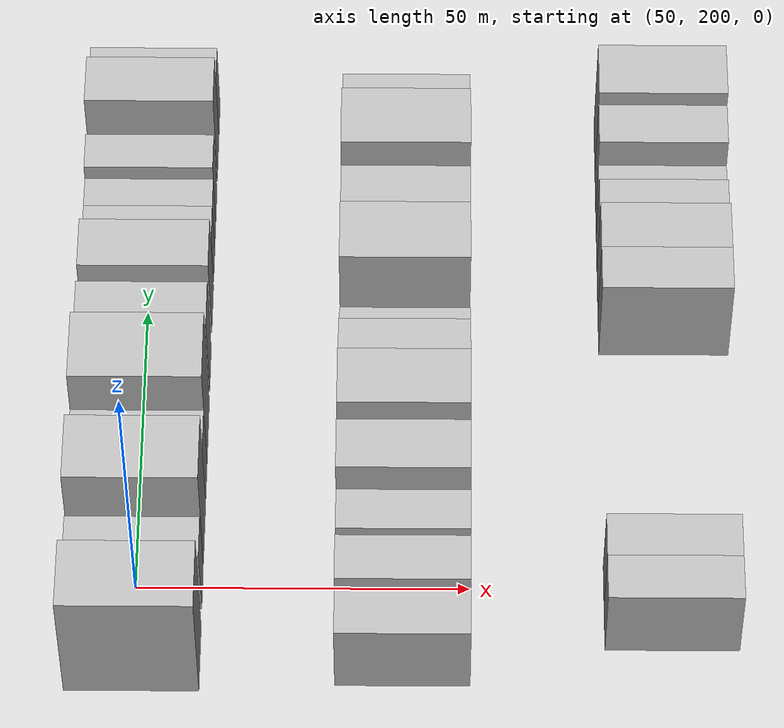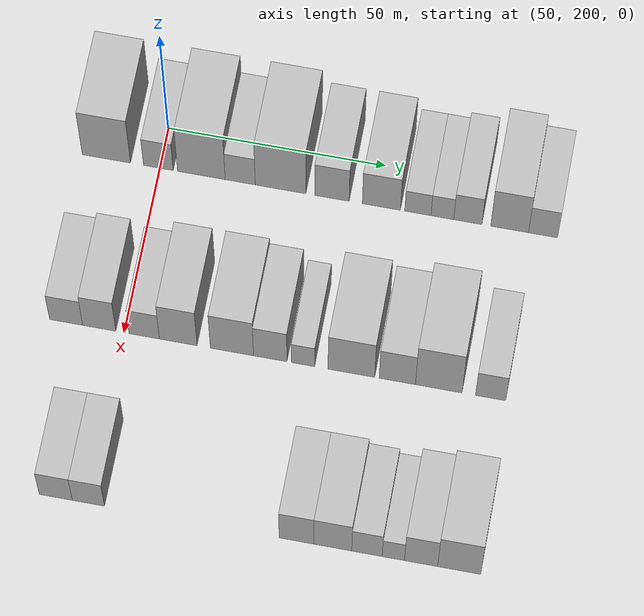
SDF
<sdf version="1.6">
 <world name="default">
  <model name="building_63">
   <static>1</static>
   <pose>50.0000 187.7218 0 0.000000 0.000000 0.000000</pose>
   <link name="link">
    <pose>0 0 12.00 0 0 0</pose>
    <collision name="collision"><geometry><box><size>20.0000 11.0932 24.0000</size></box></geometry></collision>
    <visual name="visual">
     <cast_shadows>0</cast_shadows>
     <geometry><box><size>20.0000 11.0932 24.0000</size></box></geometry>
     <material>
      <script>
       <uri>model://HANNAS_wall/materials/scripts</uri>
       <uri>model://HANNAS_wall/materials/textures</uri>
       <name>vrc/HANNAS_wall</name>
      </script>
     </material>
    </visual>
   </link>
  </model>
  <model name="building_64">
   <static>1</static>
   <pose>50.0000 199.6790 0 0.000000 0.000000 0.000000</pose>
   <link name="link">
    <pose>0 0 7.50 0 0 0</pose>
    <collision name="collision"><geometry><box><size>20.0000 6.8211 15.0000</size></box></geometry></collision>
    <visual name="visual">
     <cast_shadows>0</cast_shadows>
     <geometry><box><size>20.0000 6.8211 15.0000</size></box></geometry>
     <material>
      <script>
       <uri>model://HANNAS_wall/materials/scripts</uri>
       <uri>model://HANNAS_wall/materials/textures</uri>
       <name>vrc/HANNAS_wall</name>
      </script>
     </material>
    </visual>
   </link>
  </model>
  <model name="building_65">
   <static>1</static>
   <pose>50.0000 209.5486 0 0.000000 0.000000 0.000000</pose>
   <link name="link">
    <pose>0 0 12.00 0 0 0</pose>
    <collision name="collision"><geometry><box><size>20.0000 10.9182 24.0000</size></box></geometry></collision>
    <visual name="visual">
     <cast_shadows>0</cast_shadows>
     <geometry><box><size>20.0000 10.9182 24.0000</size></box></geometry>
     <material>
      <script>
       <uri>model://HANNAS_wall/materials/scripts</uri>
       <uri>model://HANNAS_wall/materials/textures</uri>
       <name>vrc/HANNAS_wall</name>
      </script>
     </material>
    </visual>
   </link>
  </model>
  <model name="building_66">
   <static>1</static>
   <pose>50.0000 218.4576 0 0.000000 0.000000 0.000000</pose>
   <link name="link">
    <pose>0 0 7.50 0 0 0</pose>
    <collision name="collision"><geometry><box><size>20.0000 6.8998 15.0000</size></box></geometry></collision>
    <visual name="visual">
     <cast_shadows>0</cast_shadows>
     <geometry><box><size>20.0000 6.8998 15.0000</size></box></geometry>
     <material>
      <script>
       <uri>model://HANNAS_wall/materials/scripts</uri>
       <uri>model://HANNAS_wall/materials/textures</uri>
       <name>vrc/HANNAS_wall</name>
      </script>
     </material>
    </visual>
   </link>
  </model>
  <model name="building_67">
   <static>1</static>
   <pose>50.0000 227.6946 0 0.000000 0.000000 0.000000</pose>
   <link name="link">
    <pose>0 0 12.00 0 0 0</pose>
    <collision name="collision"><geometry><box><size>20.0000 11.5742 24.0000</size></box></geometry></collision>
    <visual name="visual">
     <cast_shadows>0</cast_shadows>
     <geometry><box><size>20.0000 11.5742 24.0000</size></box></geometry>
     <material>
      <script>
       <uri>model://HANNAS_wall/materials/scripts</uri>
       <uri>model://HANNAS_wall/materials/textures</uri>
       <name>vrc/HANNAS_wall</name>
      </script>
     </material>
    </visual>
   </link>
  </model>
  <model name="building_68">
   <static>1</static>
   <pose>50.0000 239.4182 0 0.000000 0.000000 0.000000</pose>
   <link name="link">
    <pose>0 0 9.00 0 0 0</pose>
    <collision name="collision"><geometry><box><size>20.0000 7.8730 18.0000</size></box></geometry></collision>
    <visual name="visual">
     <cast_shadows>0</cast_shadows>
     <geometry><box><size>20.0000 7.8730 18.0000</size></box></geometry>
     <material>
      <script>
       <uri>model://HANNAS_wall/materials/scripts</uri>
       <uri>model://HANNAS_wall/materials/textures</uri>
       <name>vrc/HANNAS_wall</name>
      </script>
     </material>
    </visual>
   </link>
  </model>
  <model name="building_69">
   <static>1</static>
   <pose>50.0000 250.6943 0 0.000000 0.000000 0.000000</pose>
   <link name="link">
    <pose>0 0 9.00 0 0 0</pose>
    <collision name="collision"><geometry><box><size>20.0000 8.6792 18.0000</size></box></geometry></collision>
    <visual name="visual">
     <cast_shadows>0</cast_shadows>
     <geometry><box><size>20.0000 8.6792 18.0000</size></box></geometry>
     <material>
      <script>
       <uri>model://HANNAS_wall/materials/scripts</uri>
       <uri>model://HANNAS_wall/materials/textures</uri>
       <name>vrc/HANNAS_wall</name>
      </script>
     </material>
    </visual>
   </link>
  </model>
  <model name="building_70">
   <static>1</static>
   <pose>50.0000 259.0198 0 0.000000 0.000000 0.000000</pose>
   <link name="link">
    <pose>0 0 6.00 0 0 0</pose>
    <collision name="collision"><geometry><box><size>20.0000 5.9718 12.0000</size></box></geometry></collision>
    <visual name="visual">
     <cast_shadows>0</cast_shadows>
     <geometry><box><size>20.0000 5.9718 12.0000</size></box></geometry>
     <material>
      <script>
       <uri>model://HANNAS_wall/materials/scripts</uri>
       <uri>model://HANNAS_wall/materials/textures</uri>
       <name>vrc/HANNAS_wall</name>
      </script>
     </material>
    </visual>
   </link>
  </model>
  <model name="building_71">
   <static>1</static>
   <pose>50.0000 264.5907 0 0.000000 0.000000 0.000000</pose>
   <link name="link">
    <pose>0 0 6.00 0 0 0</pose>
    <collision name="collision"><geometry><box><size>20.0000 5.1698 12.0000</size></box></geometry></collision>
    <visual name="visual">
     <cast_shadows>0</cast_shadows>
     <geometry><box><size>20.0000 5.1698 12.0000</size></box></geometry>
     <material>
      <script>
       <uri>model://HANNAS_wall/materials/scripts</uri>
       <uri>model://HANNAS_wall/materials/textures</uri>
       <name>vrc/HANNAS_wall</name>
      </script>
     </material>
    </visual>
   </link>
  </model>
  <model name="building_72">
   <static>1</static>
   <pose>50.0000 270.3763 0 0.000000 0.000000 0.000000</pose>
   <link name="link">
    <pose>0 0 7.50 0 0 0</pose>
    <collision name="collision"><geometry><box><size>20.0000 6.4015 15.0000</size></box></geometry></collision>
    <visual name="visual">
     <cast_shadows>0</cast_shadows>
     <geometry><box><size>20.0000 6.4015 15.0000</size></box></geometry>
     <material>
      <script>
       <uri>model://HANNAS_wall/materials/scripts</uri>
       <uri>model://HANNAS_wall/materials/textures</uri>
       <name>vrc/HANNAS_wall</name>
      </script>
     </material>
    </visual>
   </link>
  </model>
  <model name="building_73">
   <static>1</static>
   <pose>50.0000 279.8585 0 0.000000 0.000000 0.000000</pose>
   <link name="link">
    <pose>0 0 10.50 0 0 0</pose>
    <collision name="collision"><geometry><box><size>20.0000 8.5629 21.0000</size></box></geometry></collision>
    <visual name="visual">
     <cast_shadows>0</cast_shadows>
     <geometry><box><size>20.0000 8.5629 21.0000</size></box></geometry>
     <material>
      <script>
       <uri>model://HANNAS_wall/materials/scripts</uri>
       <uri>model://HANNAS_wall/materials/textures</uri>
       <name>vrc/HANNAS_wall</name>
      </script>
     </material>
    </visual>
   </link>
  </model>
  <model name="building_74">
   <static>1</static>
   <pose>50.0000 287.4294 0 0.000000 0.000000 0.000000</pose>
   <link name="link">
    <pose>0 0 7.50 0 0 0</pose>
    <collision name="collision"><geometry><box><size>20.0000 6.5790 15.0000</size></box></geometry></collision>
    <visual name="visual">
     <cast_shadows>0</cast_shadows>
     <geometry><box><size>20.0000 6.5790 15.0000</size></box></geometry>
     <material>
      <script>
       <uri>model://HANNAS_wall/materials/scripts</uri>
       <uri>model://HANNAS_wall/materials/textures</uri>
       <name>vrc/HANNAS_wall</name>
      </script>
     </material>
    </visual>
   </link>
  </model>
  <model name="building_147">
   <static>1</static>
   <pose>90.0000 186.9736 0 0.000000 0.000000 0.000000</pose>
   <link name="link">
    <pose>0 0 7.50 0 0 0</pose>
    <collision name="collision"><geometry><box><size>20.0000 7.4780 15.0000</size></box></geometry></collision>
    <visual name="visual">
     <cast_shadows>0</cast_shadows>
     <geometry><box><size>20.0000 7.4780 15.0000</size></box></geometry>
     <material>
      <script>
       <uri>model://HANNAS_wall/materials/scripts</uri>
       <uri>model://HANNAS_wall/materials/textures</uri>
       <name>vrc/HANNAS_wall</name>
      </script>
     </material>
    </visual>
   </link>
  </model>
  <model name="building_148">
   <static>1</static>
   <pose>90.0000 194.4667 0 0.000000 0.000000 0.000000</pose>
   <link name="link">
    <pose>0 0 9.00 0 0 0</pose>
    <collision name="collision"><geometry><box><size>20.0000 7.5083 18.0000</size></box></geometry></collision>
    <visual name="visual">
     <cast_shadows>0</cast_shadows>
     <geometry><box><size>20.0000 7.5083 18.0000</size></box></geometry>
     <material>
      <script>
       <uri>model://HANNAS_wall/materials/scripts</uri>
       <uri>model://HANNAS_wall/materials/textures</uri>
       <name>vrc/HANNAS_wall</name>
      </script>
     </material>
    </visual>
   </link>
  </model>
  <model name="building_149">
   <static>1</static>
   <pose>90.0000 204.6397 0 0.000000 0.000000 0.000000</pose>
   <link name="link">
    <pose>0 0 7.50 0 0 0</pose>
    <collision name="collision"><geometry><box><size>20.0000 6.8376 15.0000</size></box></geometry></collision>
    <visual name="visual">
     <cast_shadows>0</cast_shadows>
     <geometry><box><size>20.0000 6.8376 15.0000</size></box></geometry>
     <material>
      <script>
       <uri>model://HANNAS_wall/materials/scripts</uri>
       <uri>model://HANNAS_wall/materials/textures</uri>
       <name>vrc/HANNAS_wall</name>
      </script>
     </material>
    </visual>
   </link>
  </model>
  <model name="building_150">
   <static>1</static>
   <pose>90.0000 212.3076 0 0.000000 0.000000 0.000000</pose>
   <link name="link">
    <pose>0 0 10.50 0 0 0</pose>
    <collision name="collision"><geometry><box><size>20.0000 8.4983 21.0000</size></box></geometry></collision>
    <visual name="visual">
     <cast_shadows>0</cast_shadows>
     <geometry><box><size>20.0000 8.4983 21.0000</size></box></geometry>
     <material>
      <script>
       <uri>model://HANNAS_wall/materials/scripts</uri>
       <uri>model://HANNAS_wall/materials/textures</uri>
       <name>vrc/HANNAS_wall</name>
      </script>
     </material>
    </visual>
   </link>
  </model>
  <model name="building_151">
   <static>1</static>
   <pose>90.0000 224.4110 0 0.000000 0.000000 0.000000</pose>
   <link name="link">
    <pose>0 0 10.50 0 0 0</pose>
    <collision name="collision"><geometry><box><size>20.0000 9.7085 21.0000</size></box></geometry></collision>
    <visual name="visual">
     <cast_shadows>0</cast_shadows>
     <geometry><box><size>20.0000 9.7085 21.0000</size></box></geometry>
     <material>
      <script>
       <uri>model://HANNAS_wall/materials/scripts</uri>
       <uri>model://HANNAS_wall/materials/textures</uri>
       <name>vrc/HANNAS_wall</name>
      </script>
     </material>
    </visual>
   </link>
  </model>
  <model name="building_152">
   <static>1</static>
   <pose>90.0000 233.0318 0 0.000000 0.000000 0.000000</pose>
   <link name="link">
    <pose>0 0 9.00 0 0 0</pose>
    <collision name="collision"><geometry><box><size>20.0000 7.5330 18.0000</size></box></geometry></collision>
    <visual name="visual">
     <cast_shadows>0</cast_shadows>
     <geometry><box><size>20.0000 7.5330 18.0000</size></box></geometry>
     <material>
      <script>
       <uri>model://HANNAS_wall/materials/scripts</uri>
       <uri>model://HANNAS_wall/materials/textures</uri>
       <name>vrc/HANNAS_wall</name>
      </script>
     </material>
    </visual>
   </link>
  </model>
  <model name="building_153">
   <static>1</static>
   <pose>90.0000 240.4001 0 0.000000 0.000000 0.000000</pose>
   <link name="link">
    <pose>0 0 6.00 0 0 0</pose>
    <collision name="collision"><geometry><box><size>20.0000 5.2038 12.0000</size></box></geometry></collision>
    <visual name="visual">
     <cast_shadows>0</cast_shadows>
     <geometry><box><size>20.0000 5.2038 12.0000</size></box></geometry>
     <material>
      <script>
       <uri>model://HANNAS_wall/materials/scripts</uri>
       <uri>model://HANNAS_wall/materials/textures</uri>
       <name>vrc/HANNAS_wall</name>
      </script>
     </material>
    </visual>
   </link>
  </model>
  <model name="building_154">
   <static>1</static>
   <pose>90.0000 251.2322 0 0.000000 0.000000 0.000000</pose>
   <link name="link">
    <pose>0 0 10.50 0 0 0</pose>
    <collision name="collision"><geometry><box><size>20.0000 10.4604 21.0000</size></box></geometry></collision>
    <visual name="visual">
     <cast_shadows>0</cast_shadows>
     <geometry><box><size>20.0000 10.4604 21.0000</size></box></geometry>
     <material>
      <script>
       <uri>model://HANNAS_wall/materials/scripts</uri>
       <uri>model://HANNAS_wall/materials/textures</uri>
       <name>vrc/HANNAS_wall</name>
      </script>
     </material>
    </visual>
   </link>
  </model>
  <model name="building_155">
   <static>1</static>
   <pose>90.0000 261.5144 0 0.000000 0.000000 0.000000</pose>
   <link name="link">
    <pose>0 0 9.00 0 0 0</pose>
    <collision name="collision"><geometry><box><size>20.0000 8.1039 18.0000</size></box></geometry></collision>
    <visual name="visual">
     <cast_shadows>0</cast_shadows>
     <geometry><box><size>20.0000 8.1039 18.0000</size></box></geometry>
     <material>
      <script>
       <uri>model://HANNAS_wall/materials/scripts</uri>
       <uri>model://HANNAS_wall/materials/textures</uri>
       <name>vrc/HANNAS_wall</name>
      </script>
     </material>
    </visual>
   </link>
  </model>
  <model name="building_156">
   <static>1</static>
   <pose>90.0000 270.7824 0 0.000000 0.000000 0.000000</pose>
   <link name="link">
    <pose>0 0 12.00 0 0 0</pose>
    <collision name="collision"><geometry><box><size>20.0000 10.4322 24.0000</size></box></geometry></collision>
    <visual name="visual">
     <cast_shadows>0</cast_shadows>
     <geometry><box><size>20.0000 10.4322 24.0000</size></box></geometry>
     <material>
      <script>
       <uri>model://HANNAS_wall/materials/scripts</uri>
       <uri>model://HANNAS_wall/materials/textures</uri>
       <name>vrc/HANNAS_wall</name>
      </script>
     </material>
    </visual>
   </link>
  </model>
  <model name="building_157">
   <static>1</static>
   <pose>90.0000 282.3640 0 0.000000 0.000000 0.000000</pose>
   <link name="link">
    <pose>0 0 7.50 0 0 0</pose>
    <collision name="collision"><geometry><box><size>20.0000 6.7310 15.0000</size></box></geometry></collision>
    <visual name="visual">
     <cast_shadows>0</cast_shadows>
     <geometry><box><size>20.0000 6.7310 15.0000</size></box></geometry>
     <material>
      <script>
       <uri>model://HANNAS_wall/materials/scripts</uri>
       <uri>model://HANNAS_wall/materials/textures</uri>
       <name>vrc/HANNAS_wall</name>
      </script>
     </material>
    </visual>
   </link>
  </model>
  <model name="building_234">
   <static>1</static>
   <pose>130.0000 193.2041 0 0.000000 0.000000 0.000000</pose>
   <link name="link">
    <pose>0 0 7.50 0 0 0</pose>
    <collision name="collision"><geometry><box><size>20.0000 7.3306 15.0000</size></box></geometry></collision>
    <visual name="visual">
     <cast_shadows>0</cast_shadows>
     <geometry><box><size>20.0000 7.3306 15.0000</size></box></geometry>
     <material>
      <script>
       <uri>model://HANNAS_wall/materials/scripts</uri>
       <uri>model://HANNAS_wall/materials/textures</uri>
       <name>vrc/HANNAS_wall</name>
      </script>
     </material>
    </visual>
   </link>
  </model>
  <model name="building_235">
   <static>1</static>
   <pose>130.0000 200.4515 0 0.000000 0.000000 0.000000</pose>
   <link name="link">
    <pose>0 0 7.50 0 0 0</pose>
    <collision name="collision"><geometry><box><size>20.0000 7.1641 15.0000</size></box></geometry></collision>
    <visual name="visual">
     <cast_shadows>0</cast_shadows>
     <geometry><box><size>20.0000 7.1641 15.0000</size></box></geometry>
     <material>
      <script>
       <uri>model://HANNAS_wall/materials/scripts</uri>
       <uri>model://HANNAS_wall/materials/textures</uri>
       <name>vrc/HANNAS_wall</name>
      </script>
     </material>
    </visual>
   </link>
  </model>
  <model name="building_236">
   <static>1</static>
   <pose>130.0000 246.5125 0 0.000000 0.000000 0.000000</pose>
   <link name="link">
    <pose>0 0 9.00 0 0 0</pose>
    <collision name="collision"><geometry><box><size>20.0000 7.6526 18.0000</size></box></geometry></collision>
    <visual name="visual">
     <cast_shadows>0</cast_shadows>
     <geometry><box><size>20.0000 7.6526 18.0000</size></box></geometry>
     <material>
      <script>
       <uri>model://HANNAS_wall/materials/scripts</uri>
       <uri>model://HANNAS_wall/materials/textures</uri>
       <name>vrc/HANNAS_wall</name>
      </script>
     </material>
    </visual>
   </link>
  </model>
  <model name="building_237">
   <static>1</static>
   <pose>130.0000 254.5104 0 0.000000 0.000000 0.000000</pose>
   <link name="link">
    <pose>0 0 9.00 0 0 0</pose>
    <collision name="collision"><geometry><box><size>20.0000 8.3433 18.0000</size></box></geometry></collision>
    <visual name="visual">
     <cast_shadows>0</cast_shadows>
     <geometry><box><size>20.0000 8.3433 18.0000</size></box></geometry>
     <material>
      <script>
       <uri>model://HANNAS_wall/materials/scripts</uri>
       <uri>model://HANNAS_wall/materials/textures</uri>
       <name>vrc/HANNAS_wall</name>
      </script>
     </material>
    </visual>
   </link>
  </model>
  <model name="building_238">
   <static>1</static>
   <pose>130.0000 262.0339 0 0.000000 0.000000 0.000000</pose>
   <link name="link">
    <pose>0 0 7.50 0 0 0</pose>
    <collision name="collision"><geometry><box><size>20.0000 6.7037 15.0000</size></box></geometry></collision>
    <visual name="visual">
     <cast_shadows>0</cast_shadows>
     <geometry><box><size>20.0000 6.7037 15.0000</size></box></geometry>
     <material>
      <script>
       <uri>model://HANNAS_wall/materials/scripts</uri>
       <uri>model://HANNAS_wall/materials/textures</uri>
       <name>vrc/HANNAS_wall</name>
      </script>
     </material>
    </visual>
   </link>
  </model>
  <model name="building_239">
   <static>1</static>
   <pose>130.0000 267.8284 0 0.000000 0.000000 0.000000</pose>
   <link name="link">
    <pose>0 0 6.00 0 0 0</pose>
    <collision name="collision"><geometry><box><size>20.0000 4.8853 12.0000</size></box></geometry></collision>
    <visual name="visual">
     <cast_shadows>0</cast_shadows>
     <geometry><box><size>20.0000 4.8853 12.0000</size></box></geometry>
     <material>
      <script>
       <uri>model://HANNAS_wall/materials/scripts</uri>
       <uri>model://HANNAS_wall/materials/textures</uri>
       <name>vrc/HANNAS_wall</name>
      </script>
     </material>
    </visual>
   </link>
  </model>
  <model name="building_240">
   <static>1</static>
   <pose>130.0000 273.9155 0 0.000000 0.000000 0.000000</pose>
   <link name="link">
    <pose>0 0 9.00 0 0 0</pose>
    <collision name="collision"><geometry><box><size>20.0000 7.2888 18.0000</size></box></geometry></collision>
    <visual name="visual">
     <cast_shadows>0</cast_shadows>
     <geometry><box><size>20.0000 7.2888 18.0000</size></box></geometry>
     <material>
      <script>
       <uri>model://HANNAS_wall/materials/scripts</uri>
       <uri>model://HANNAS_wall/materials/textures</uri>
       <name>vrc/HANNAS_wall</name>
      </script>
     </material>
    </visual>
   </link>
  </model>
  <model name="building_241">
   <static>1</static>
   <pose>130.0000 282.2737 0 0.000000 0.000000 0.000000</pose>
   <link name="link">
    <pose>0 0 10.50 0 0 0</pose>
    <collision name="collision"><geometry><box><size>20.0000 9.4276 21.0000</size></box></geometry></collision>
    <visual name="visual">
     <cast_shadows>0</cast_shadows>
     <geometry><box><size>20.0000 9.4276 21.0000</size></box></geometry>
     <material>
      <script>
       <uri>model://HANNAS_wall/materials/scripts</uri>
       <uri>model://HANNAS_wall/materials/textures</uri>
       <name>vrc/HANNAS_wall</name>
      </script>
     </material>
    </visual>
   </link>
  </model>
 </world>
</sdf>
